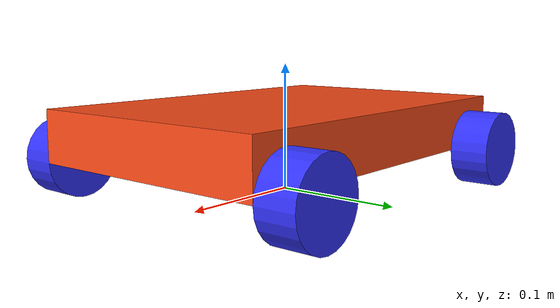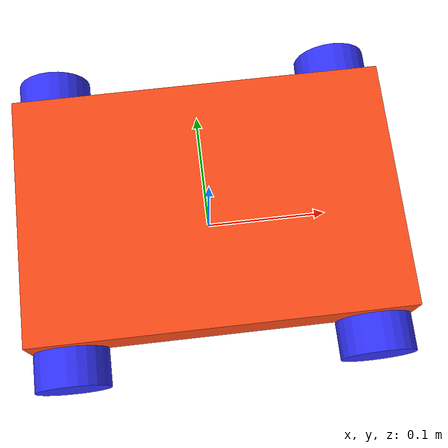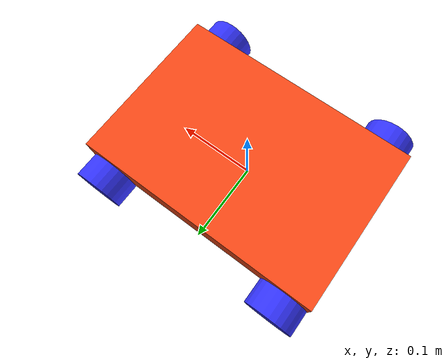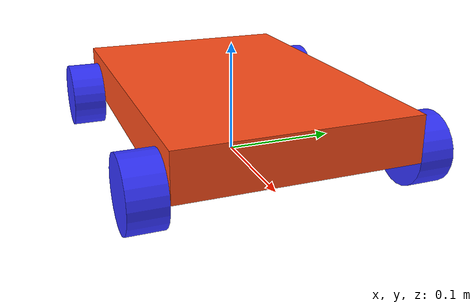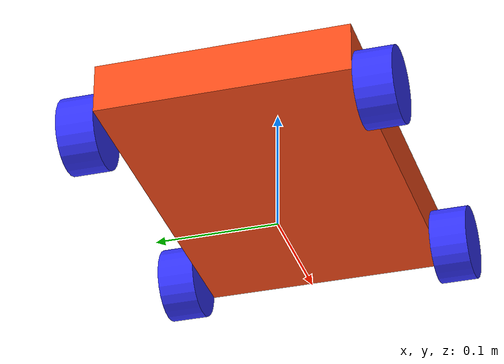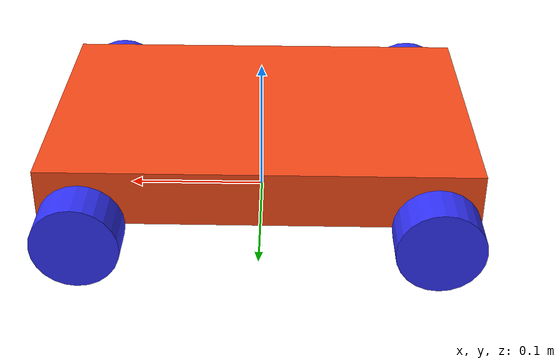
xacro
<?xml version="1.0"?>
<robot xmlns:xacro="http://www.ros.org/wiki/xacro">

    <xacro:include filename="inertial_macros.xacro"/>
     <xacro:arg name="namespace" default="" />

    <material name="white">
        <color rgba="1.0 1.0 1.0 1.0"/>
    </material>

    <material name="orange">
        <color rgba="1 0.3 0.1 1"/>
    </material>

    <material name="blue">
        <color rgba="0.2 0.2 1 1"/>
    </material>

    <material name="black">
        <color rgba="0 0 0 1"/>
    </material>

    <material name="red">
        <color rgba="1 0 0 1"/>
    </material>

    <!-- BASE FOOTPRINT LINK -->

    <link name="base_footprint">
        <origin xyz="0.0 0.0 0.0" rpy="0.0 0.0 0.0"/>
    </link>

    <!-- BASE LINK -->

    <joint name="base_joint" type="fixed">
        <origin xyz="0.0 0.0 0.03" rpy="0 0 0"/>
        <parent link="base_footprint"/>
        <child link="base_link"/>
    </joint>

    <link name="base_link">
        <visual>
            <origin xyz="0 0 0.02"/>
            <geometry>
                <box size="0.3 0.2 0.04"/>
            </geometry>
            <material name="orange"/>
        </visual>
        <collision>
            <origin xyz="0 0 0.02"/>
            <geometry>
                <box size="0.3 0.2 0.04"/>
            </geometry>
        </collision>
        <xacro:inertial_box mass="5" x="0.3" y="0.2" z="0.04">
            <origin xyz="0 0 0.02" rpy="0.0 0.0 0.0"/>
        </xacro:inertial_box>
    </link>

    <gazebo reference="base_link">
        <material>Gazebo/Orange</material>
    </gazebo>

    <!-- LEFT WHEEL LINK-->

    <joint name="front_left_wheel_joint" type="continuous">
        <parent link="base_link"/>
        <child link="front_left_wheel"/>
        <origin xyz="0.12 0.115 0.0" rpy="-${pi/2} 0.0 0.0"/>
        <axis xyz="0.0 0.0 1.0"/>
        <dynamics damping="1.0" friction="1.0"/>
    </joint>

    <link name="front_left_wheel">
        <visual>
            <geometry>
                <cylinder radius="0.03" length="0.03"/>
            </geometry>
            <material name="blue"/>
        </visual>
        <collision>
            <geometry>
                <cylinder radius="0.03" length="0.03"/>
            </geometry>
        </collision>

        <xacro:inertial_cylinder mass="0.6" length="0.03" radius="0.03">
            <origin xyz="0.0 0.0 0.0" rpy="0.0 0.0 0.0"/>
        </xacro:inertial_cylinder>
    </link>

    <gazebo reference="front_left_wheel">
        <material>Gazebo/Blue</material>
        <mu1>1.5</mu1>
        <mu2>0.7</mu2>
        <kp>200000.0</kp>
        <kd>5000.0</kd>
        <minDepth>0.002</minDepth>
        <maxVel>10</maxVel>
        <fdir1>0 1 0</fdir1>
    </gazebo>

    <joint name="back_left_wheel_joint" type="continuous">
        <parent link="base_link"/>
        <child link="back_left_wheel"/>
        <origin xyz="-0.12 0.115 0.0" rpy="-${pi/2} 0.0 0.0"/>
        <axis xyz="0.0 0.0 1.0"/>
        <dynamics damping="1.0" friction="1.0"/>
    </joint>

    <link name="back_left_wheel">
        <visual>
            <geometry>
                <cylinder radius="0.03" length="0.03"/>
            </geometry>
            <material name="blue"/>
        </visual>
        <collision>
            <geometry>
                <cylinder radius="0.03" length="0.03"/>
            </geometry>

        </collision>

        <xacro:inertial_cylinder mass="0.6" length="0.03" radius="0.03">
            <origin xyz="0.0 0.0 0.0" rpy="0.0 0.0 0.0"/>
        </xacro:inertial_cylinder>
    </link>

    <gazebo reference="back_left_wheel">
        <material>Gazebo/Blue</material>
        <mu1>1.5</mu1>
        <mu2>0.7</mu2>
        <kp>200000.0</kp>
        <kd>5000.0</kd>
        <minDepth>0.002</minDepth>
        <maxVel>10</maxVel>
        <fdir1>0 1 0</fdir1>
    </gazebo>

    <!-- RIGHT WHEEL LINK-->

    <joint name="front_right_wheel_joint" type="continuous">
        <parent link="base_link"/>
        <child link="front_right_wheel"/>
        <origin xyz="0.12 -0.115 0.0" rpy="${pi/2} 0.0 0.0"/>
        <axis xyz="0.0 0.0 -1.0"/>
        <dynamics damping="1.0" friction="1.0"/>
    </joint>

    <link name="front_right_wheel">
        <visual>
            <geometry>
                <cylinder radius="0.03" length="0.03"/>
            </geometry>
            <material name="blue"/>
        </visual>
        <collision>
            <geometry>
                <cylinder radius="0.03" length="0.03"/>
            </geometry>

        </collision>
        <xacro:inertial_cylinder mass="0.6" length="0.03" radius="0.03">
            <origin xyz="0.0 0.0 0.0" rpy="0.0 0.0 0.0"/>
        </xacro:inertial_cylinder>
    </link>

    <gazebo reference="front_right_wheel">
        <material>Gazebo/Blue</material>
        <mu1>1.5</mu1>
        <mu2>0.7</mu2>
        <kp>200000.0</kp>
        <kd>5000.0</kd>
        <minDepth>0.002</minDepth>
        <maxVel>10</maxVel>
        <fdir1>0 1 0</fdir1>
    </gazebo>

    <joint name="back_right_wheel_joint" type="continuous">
        <parent link="base_link"/>
        <child link="back_right_wheel"/>
        <origin xyz="-0.12 -0.115 0.0" rpy="${pi/2} 0.0 0.0"/>
        <axis xyz="0.0 0.0 -1.0"/>
        <dynamics damping="1.0" friction="1.0"/>
    </joint>

    <link name="back_right_wheel">
        <visual>
            <geometry>
                <cylinder radius="0.03" length="0.03"/>
            </geometry>
            <material name="blue"/>
        </visual>
        <collision>
            <geometry>
                <cylinder radius="0.03" length="0.03"/>
            </geometry>

        </collision>
        <xacro:inertial_cylinder mass="0.6" length="0.03" radius="0.03">
            <origin xyz="0.0 0.0 0.0" rpy="0.0 0.0 0.0"/>
        </xacro:inertial_cylinder>
    </link>

    <gazebo reference="back_right_wheel">
        <material>Gazebo/Blue</material>
        <mu1>1.5</mu1>
        <mu2>0.7</mu2>
        <kp>200000.0</kp>
        <kd>5000.0</kd>
        <minDepth>0.002</minDepth>
        <maxVel>10</maxVel>
        <fdir1>0 1 0</fdir1>
    </gazebo>
</robot>
